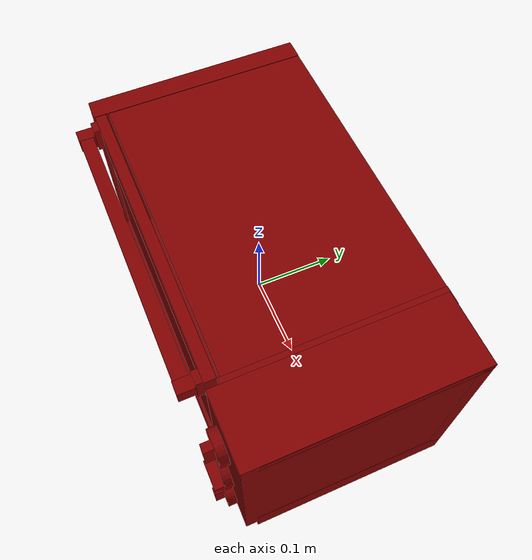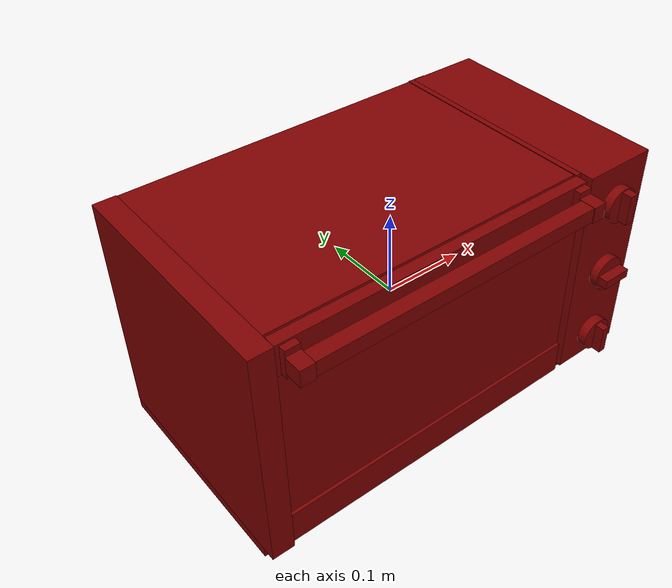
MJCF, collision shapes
<?xml version='1.0' encoding='UTF-8'?>
<mujoco model="model">
  <option timestep="0.002" gravity="0.0 0.0 -9.81"/>
  <compiler angle="radian"/>
  <asset>
    <mesh file="visuals/Body001.obj" name="Body001_vis"/>
    <mesh file="visuals/Container001.obj" name="Container001_vis"/>
    <mesh file="visuals/Door001.obj" name="Door001_vis"/>
    <mesh file="visuals/Door001_Clear.obj" name="Door001_Clear_vis"/>
    <mesh file="visuals/Knob001.obj" name="Knob001_vis"/>
    <mesh file="visuals/Knob002.obj" name="Knob002_vis"/>
    <mesh file="visuals/Knob003.obj" name="Knob003_vis"/>
    <texture file="visuals/T_BC001.png" name="Body001_material" type="2d"/>
    <material name="Body001_material" rgba="1 1 1 1.0" texture="Body001_material" shininess="0.1" specular="4"/>
    <texture file="visuals/T_BC001.png" name="Container001_material" type="2d"/>
    <material name="Container001_material" rgba="1 1 1 1.0" texture="Container001_material" shininess="0.1" specular="4"/>
    <texture file="visuals/T_BC001.png" name="Door001_material" type="2d"/>
    <material name="Door001_material" rgba="1 1 1 1.0" texture="Door001_material" shininess="0.1" specular="4"/>
    <texture file="visuals/T_BC001.png" name="Door001_Clear_material" type="2d"/>
    <material name="Door001_Clear_material" rgba="1 1 1 0.800000011920929" texture="Door001_Clear_material" shininess="0.5" specular="0.3103448502657381"/>
    <texture file="visuals/T_BC001.png" name="Knob001_material" type="2d"/>
    <material name="Knob001_material" rgba="1 1 1 1.0" texture="Knob001_material" shininess="0.141421377658844" specular="0.3103448502657381"/>
    <texture file="visuals/T_BC001.png" name="Knob002_material" type="2d"/>
    <material name="Knob002_material" rgba="1 1 1 1.0" texture="Knob002_material" shininess="0.141421377658844" specular="0.3103448502657381"/>
    <texture file="visuals/T_BC001.png" name="Knob003_material" type="2d"/>
    <material name="Knob003_material" rgba="1 1 1 1.0" texture="Knob003_material" shininess="0.141421377658844" specular="0.3103448502657381"/>
  </asset>
  <default>
    <default class="visual">
      <geom conaffinity="0" contype="0" group="1" type="mesh"/>
    </default>
    <default class="collision">
      <geom group="0" rgba="0.5 0 0 0.5"/>
    </default>
    <default class="spawn">
      <geom group="0" rgba="1 1 1 0.5" contype="0" conaffinity="0"/>
      <site group="0" rgba="1 1 1 0.5"/>
    </default>
    <default class="region">
      <geom group="1" conaffinity="0" contype="0" rgba="0 1 0 0"/>
    </default>
  </default>
  <worldbody>
    <body>
      <body name="object">
        <geom mesh="Body001_vis" type="mesh" solimp="0.998 0.998 0.001" solref="0.001 1" friction="0.95 0.3 0.1" class="visual" material="Body001_material"/>
        <geom class="collision" type="box" pos="0.000000 0.141903 -0.003001" size="0.2516711950302124 0.0098989587277174 0.14056943356990814" quat="1.0 0.0 0.0 0.0" density="1000.0"/>
        <geom class="collision" type="box" pos="0.000000 0.022333 0.136362" size="0.2516711950302124 0.12996527552604675 0.005646265111863613" quat="1.0 0.0 0.0 0.0" density="1000.0"/>
        <geom class="collision" type="box" pos="0.000000 0.020757 -0.120965" size="0.2516711950302124 0.13100303709506989 0.02260592021048069" quat="1.0 0.0 0.0 0.0" density="1000.0"/>
        <geom class="collision" type="box" pos="-0.238594 0.013235 0.005919" size="0.013077608309686184 0.13923826813697815 0.13695597648620605" quat="1.0 0.0 0.0 0.0" density="1000.0"/>
        <geom class="collision" type="box" pos="0.206419 0.012828 0.010201" size="0.04505255073308945 0.13871000707149506 0.13274425268173218" quat="1.0 0.0 0.0 0.0" density="1000.0"/>
        <geom class="collision" type="box" pos="0.149283 0.022269 0.028627" size="0.0049460954032838345 0.10656570643186569 0.006662145256996155" quat="1.0 0.0 0.0 0.0" density="1000.0"/>
        <geom class="collision" type="box" pos="0.151396 0.022269 -0.016458" size="0.0049460954032838345 0.10656570643186569 0.006662145256996155" quat="1.0 0.0 0.0 0.0" density="1000.0"/>
        <geom class="collision" type="box" pos="-0.222352 0.022269 -0.016458" size="0.0049460954032838345 0.10656570643186569 0.006662145256996155" quat="1.0 0.0 0.0 0.0" density="1000.0"/>
        <geom class="collision" type="box" pos="-0.221754 0.022269 0.027937" size="0.0049460954032838345 0.10656570643186569 0.006662145256996155" quat="1.0 0.0 0.0 0.0" density="1000.0"/>
        <geom class="collision" type="box" pos="0.165647 0.020679 0.005919" size="0.011410491541028023 0.1317940503358841 0.13695597648620605" quat="1.0 0.0 0.0 0.0" density="1000.0"/>
        <body name="Container001">
          <joint axis="0.0 -1.0 0.0" pos="-0.035610 0.020282 -0.007500" limited="true" name="Container001_joint" range="0.0 0.2" type="slide" damping="1" frictionloss="1" armature=".01" stiffness="0.05"/>
          <geom mesh="Container001_vis" type="mesh" solimp="0.998 0.998 0.001" solref="0.001 1" friction="0.95 0.3 0.1" class="visual" material="Container001_material"/>
          <geom class="collision" type="box" pos="-0.034871 0.021551 -0.027884" size="0.16405700147151947 0.09724215418100357 0.0009459041757509112" quat="1.0 0.0 0.0 0.0" density="1000.0"/>
          <geom class="collision" type="box" pos="-0.204521 0.020015 -0.019472" size="0.010846824385225773 0.08808588981628418 0.0014210442313924432" quat="0.8347759246826172 0.0 0.5505897998809814 0.0" density="1000.0"/>
          <geom class="collision" type="box" pos="-0.038234 -0.080741 -0.018974" size="0.010846824385225773 0.1540035903453827 0.0014210460940375924" quat="0.5600182414054871 -0.43171703815460205 0.43171706795692444 0.5600181818008423" density="1000.0"/>
          <geom class="collision" type="box" pos="0.133790 0.020015 -0.019472" size="0.010846824385225773 0.08808588981628418 0.0014210442313924432" quat="0.8347759246826172 0.0 -0.5505897998809814 0.0" density="1000.0"/>
          <geom class="collision" type="box" pos="-0.038234 0.122085 -0.018974" size="0.010846824385225773 0.1540035903453827 0.0014210460940375924" quat="0.5600182414054871 0.43171703815460205 0.43171706795692444 -0.5600181818008423" density="1000.0"/>
          <geom class="collision" type="box" pos="-0.200673 -0.070139 -0.019472" size="0.010846824385225773 0.007289346773177385 0.0014210442313924432" quat="0.8021135926246643 -0.15250755846500397 0.529046893119812 0.23122410476207733" density="1000.0"/>
          <geom class="collision" type="box" pos="-0.192460 -0.077675 -0.019472" size="0.010846824385225773 0.007289346773177385 0.0014210442313924432" quat="0.7184901833534241 -0.2803136706352234 0.4738919138908386 0.42499712109565735" density="1000.0"/>
          <geom class="collision" type="box" pos="-0.211645 0.020311 -0.011114" size="0.004431259352713823 0.09273609519004822 0.001113771228119731" quat="1.0 0.0 0.0 0.0" density="1000.0"/>
          <geom class="collision" type="box" pos="-0.035606 -0.084513 -0.011114" size="0.0028132975567132235 0.16505731642246246 0.001113771228119731" quat="0.7071068286895752 0.0 0.0 0.7071067690849304" density="1000.0"/>
          <geom class="collision" type="box" pos="-0.208867 -0.074277 -0.011114" size="0.004431258421391249 0.005167094059288502 0.001113771228119731" quat="0.9630977511405945 0.0 0.0 0.269151896238327" density="1000.0"/>
          <geom class="collision" type="box" pos="-0.202577 -0.080206 -0.011114" size="0.004431259352713823 0.006074630655348301 0.001113771228119731" quat="0.8660538196563721 0.0 0.0 0.4999507665634155" density="1000.0"/>
          <geom class="collision" type="box" pos="-0.202577 0.120381 -0.011114" size="0.004431259352713823 0.006074630655348301 0.001113771228119731" quat="0.8660538196563721 0.0 -0.0 -0.4999507665634155" density="1000.0"/>
          <geom class="collision" type="box" pos="-0.208867 0.114452 -0.011114" size="0.004431258421391249 0.005167094059288502 0.001113771228119731" quat="0.9630977511405945 0.0 -0.0 -0.26915186643600464" density="1000.0"/>
          <geom class="collision" type="box" pos="-0.192460 0.117851 -0.019472" size="0.010846824385225773 0.007289346773177385 0.0014210442313924432" quat="0.7184903025627136 0.2803135812282562 0.4738919138908386 -0.4249970018863678" density="1000.0"/>
          <geom class="collision" type="box" pos="-0.200673 0.110315 -0.019472" size="0.010846824385225773 0.007289346773177385 0.0014210442313924432" quat="0.8021135926246643 0.15250757336616516 0.529046893119812 -0.23122413456439972" density="1000.0"/>
          <geom class="collision" type="box" pos="-0.035606 0.125632 -0.011114" size="0.0028132975567132235 0.16505731642246246 0.001113771228119731" quat="0.7071068286895752 0.0 0.0 0.7071067690849304" density="1000.0"/>
          <geom class="collision" type="box" pos="0.129580 0.110315 -0.019472" size="0.010846824385225773 0.007289346773177385 0.0014210442313924432" quat="0.8021135926246643 0.15250757336616516 -0.529046893119812 0.23122413456439972" density="1000.0"/>
          <geom class="collision" type="box" pos="0.121272 0.117851 -0.019472" size="0.010846824385225773 0.007289346773177385 0.0014210442313924432" quat="0.7184901833534241 0.2803136706352234 -0.4738919138908386 0.42499712109565735" density="1000.0"/>
          <geom class="collision" type="box" pos="0.137679 0.114452 -0.011114" size="0.004431259352713823 0.005167094990611076 0.001113771228119731" quat="0.9630977511405945 0.0 0.0 0.26915183663368225" density="1000.0"/>
          <geom class="collision" type="box" pos="0.131389 0.120381 -0.011114" size="0.004431259352713823 0.006074630655348301 0.001113771228119731" quat="0.8660538196563721 0.0 0.0 0.4999507665634155" density="1000.0"/>
          <geom class="collision" type="box" pos="0.131807 -0.080206 -0.011114" size="0.004431259352713823 0.006074630655348301 0.001113771228119731" quat="0.8660538196563721 0.0 -0.0 -0.4999507665634155" density="1000.0"/>
          <geom class="collision" type="box" pos="0.138097 -0.074277 -0.011114" size="0.004431258421391249 0.005167094059288502 0.001113771228119731" quat="0.9630977511405945 0.0 -0.0 -0.26915186643600464" density="1000.0"/>
          <geom class="collision" type="box" pos="0.121272 -0.077675 -0.019472" size="0.010846824385225773 0.007289346773177385 0.0014210442313924432" quat="0.7184906601905823 -0.28031325340270996 -0.473891943693161 -0.42499658465385437" density="1000.0"/>
          <geom class="collision" type="box" pos="0.129485 -0.070139 -0.019472" size="0.010846824385225773 0.007289346773177385 0.0014210442313924432" quat="0.8021136522293091 -0.15250754356384277 -0.529046893119812 -0.23122408986091614" density="1000.0"/>
          <geom class="collision" type="box" pos="0.140673 0.020311 -0.011114" size="0.004431259352713823 0.09273609519004822 0.001113771228119731" quat="1.0 0.0 0.0 0.0" density="1000.0"/>
        </body>
        <body name="Door001">
          <joint axis="1.0 0.0 0.0" pos="-0.035425 -0.124750 -0.124850" limited="true" name="Door001_joint" range="0.0 1.5707963267948966" type="hinge" damping="1" frictionloss="1" armature=".01" stiffness="0.05"/>
          <geom mesh="Door001_vis" type="mesh" solimp="0.998 0.998 0.001" solref="0.001 1" friction="0.95 0.3 0.1" class="visual" material="Door001_material"/>
          <geom class="collision" type="box" pos="-0.033930 -0.143918 0.124398" size="0.008540567010641098 0.008540554903447628 0.1724206954240799" quat="0.7071068286895752 -0.0 0.7071067690849304 0.0" density="1000.0"/>
          <geom class="collision" type="box" pos="-0.212501 -0.142888 0.123829" size="0.008210696280002594 0.010478229261934757 0.009354672394692898" quat="1.0 0.0 0.0 0.0" density="1000.0"/>
          <geom class="collision" type="box" pos="-0.212501 -0.128609 0.124297" size="0.008210696280002594 0.004345485009253025 0.015908753499388695" quat="1.0 0.0 0.0 0.0" density="1000.0"/>
          <geom class="collision" type="box" pos="0.144055 -0.142888 0.123829" size="0.00813705287873745 0.010478229261934757 0.009354672394692898" quat="1.0 0.0 0.0 0.0" density="1000.0"/>
          <geom class="collision" type="box" pos="0.144055 -0.128609 0.124297" size="0.00813705287873745 0.004345485009253025 0.015908753499388695" quat="1.0 0.0 0.0 0.0" density="1000.0"/>
          <geom class="collision" type="box" pos="-0.035509 -0.118056 -0.104166" size="0.18964214622974396 0.006914790719747543 0.020642021670937538" quat="1.0 0.0 0.0 0.0" density="1000.0"/>
          <geom class="collision" type="box" pos="-0.035509 -0.118056 0.124805" size="0.18964214622974396 0.006914790719747543 0.017781980335712433" quat="1.0 0.0 0.0 0.0" density="1000.0"/>
          <body name="Door001_Clear">
            <geom mesh="Door001_Clear_vis" type="mesh" solimp="0.998 0.998 0.001" solref="0.001 1" friction="0.95 0.3 0.1" class="visual" material="Door001_Clear_material"/>
            <geom class="collision" type="box" pos="-0.035121 -0.118926 0.013986" size="0.18925386667251587 0.0024740940425544977 0.10716895014047623" quat="1.0 0.0 0.0 0.0" density="1000.0"/>
          </body>
        </body>
        <body name="Knob001">
          <joint axis="0.0 1.0 0.0" pos="0.205815 -0.137155 0.097252" limited="true" name="Knob001_joint" range="0.0 5.672320068981571" type="hinge" damping="0.05" armature="0.001"/>
          <geom mesh="Knob001_vis" type="mesh" solimp="0.998 0.998 0.001" solref="0.001 1" friction="0.95 0.3 0.1" class="visual" material="Knob001_material"/>
          <geom class="collision" type="cylinder" pos="0.205458 -0.132508 0.097141" size="0.020842524245381355 0.005300640594214201" quat="0.7071068286895752 0.7071067690849304 0.0 0.0" density="1000.0"/>
          <geom class="collision" type="box" pos="0.206510 -0.143506 0.097882" size="0.01780889928340912 0.005939288064837456 0.005275481380522251" quat="0.7071068286895752 -4.750302906586512e-08 0.7071067094802856 4.7503018407724085e-08" density="1000.0"/>
        </body>
        <body name="Knob002">
          <joint axis="1.342940407766946e-07 1.0 1.3853208713499043e-07" pos="0.206345 -0.137155 0.004137" limited="true" name="Knob002_joint" range="0.0 2.6179938779914944" type="hinge" damping="0.05" armature="0.001"/>
          <geom mesh="Knob002_vis" type="mesh" solimp="0.998 0.998 0.001" solref="0.001 1" friction="0.95 0.3 0.1" class="visual" material="Knob002_material"/>
          <geom class="collision" type="cylinder" pos="0.206270 -0.132528 0.003995" size="0.020695757120847702 0.005031688138842583" quat="0.7071068286895752 0.7071067690849304 0.0 0.0" density="1000.0"/>
          <geom class="collision" type="box" pos="0.206510 -0.143506 0.002995" size="0.01780889928340912 0.005939288064837456 0.005275481380522251" quat="7.54978870531886e-08 -6.71794140316706e-08 1.0 1.3435885648505064e-07" density="1000.0"/>
        </body>
        <body name="Knob003">
          <joint axis="0.0 1.0 0.0" pos="0.206345 -0.137155 -0.088748" limited="true" name="Knob003_joint" range="0.0 4.537856055185257" type="hinge" damping="0.05" armature="0.001"/>
          <geom mesh="Knob003_vis" type="mesh" solimp="0.998 0.998 0.001" solref="0.001 1" friction="0.95 0.3 0.1" class="visual" material="Knob003_material"/>
          <geom class="collision" type="cylinder" pos="0.206141 -0.132166 -0.088799" size="0.02046852931380272 0.0056593469344079494" quat="0.7071068286895752 0.7071067690849304 0.0 0.0" density="1000.0"/>
          <geom class="collision" type="box" pos="0.206174 -0.143506 -0.089783" size="0.01780889928340912 0.005939288064837456 0.0046818931587040424" quat="0.7071068286895752 -4.750302906586512e-08 0.7071067094802856 4.7503018407724085e-08" density="1000.0"/>
        </body>
        <geom class="region" name="reg_int" type="box" pos="-0.0358 0.017080500000000005 0.015996000000000003" size="0.189834 0.1162225 0.11435999999999999"/>
        <geom class="region" name="reg_main" type="box" pos="0.0 0.013382000000000005 0.0" size="0.251709 0.140011 0.143635"/>
      </body>
    </body>
  </worldbody>
  <actuator>
    <motor name="Container001_joint_actuator" joint="Container001_joint" gear="10"/>
    <motor name="Door001_joint_actuator" joint="Door001_joint" gear="50"/>
    <motor name="Knob001_joint_actuator" joint="Knob001_joint" gear="50"/>
    <motor name="Knob002_joint_actuator" joint="Knob002_joint" gear="50"/>
    <motor name="Knob003_joint_actuator" joint="Knob003_joint" gear="50"/>
  </actuator>
</mujoco>
